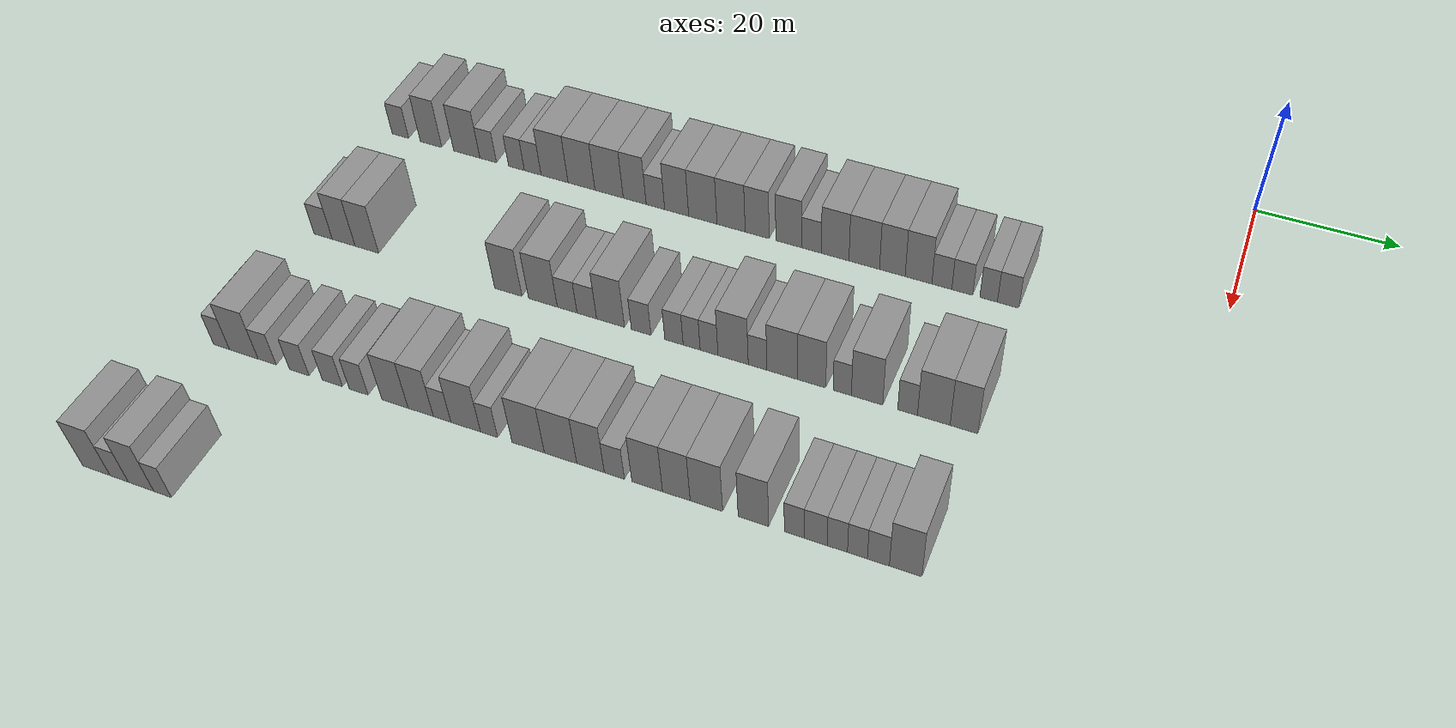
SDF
<sdf version="1.6">
 <world name="default">
  <model name="building_66">
   <static>1</static>
   <pose>25.0000 -121.5456 0 0.000000 0.000000 0.000000</pose>
   <link name="link">
    <pose>0 0 3.00 0 0 0</pose>
    <collision name="collision"><geometry><box><size>10.0000 2.8247 6.0000</size></box></geometry></collision>
    <visual name="visual">
     <cast_shadows>0</cast_shadows>
     <geometry><box><size>10.0000 2.8247 6.0000</size></box></geometry>
     <material>
      <script>
       <uri>model://grey_wall/materials/scripts</uri>
       <uri>model://grey_wall/materials/textures</uri>
       <name>vrc/grey_wall</name>
      </script>
     </material>
    </visual>
   </link>
  </model>
  <model name="building_67">
   <static>1</static>
   <pose>25.0000 -116.3218 0 0.000000 0.000000 0.000000</pose>
   <link name="link">
    <pose>0 0 4.50 0 0 0</pose>
    <collision name="collision"><geometry><box><size>10.0000 3.6230 9.0000</size></box></geometry></collision>
    <visual name="visual">
     <cast_shadows>0</cast_shadows>
     <geometry><box><size>10.0000 3.6230 9.0000</size></box></geometry>
     <material>
      <script>
       <uri>model://grey_wall/materials/scripts</uri>
       <uri>model://grey_wall/materials/textures</uri>
       <name>vrc/grey_wall</name>
      </script>
     </material>
    </visual>
   </link>
  </model>
  <model name="building_68">
   <static>1</static>
   <pose>25.0000 -110.3166 0 0.000000 0.000000 0.000000</pose>
   <link name="link">
    <pose>0 0 4.50 0 0 0</pose>
    <collision name="collision"><geometry><box><size>10.0000 4.3874 9.0000</size></box></geometry></collision>
    <visual name="visual">
     <cast_shadows>0</cast_shadows>
     <geometry><box><size>10.0000 4.3874 9.0000</size></box></geometry>
     <material>
      <script>
       <uri>model://grey_wall/materials/scripts</uri>
       <uri>model://grey_wall/materials/textures</uri>
       <name>vrc/grey_wall</name>
      </script>
     </material>
    </visual>
   </link>
  </model>
  <model name="building_69">
   <static>1</static>
   <pose>25.0000 -106.7494 0 0.000000 0.000000 0.000000</pose>
   <link name="link">
    <pose>0 0 3.00 0 0 0</pose>
    <collision name="collision"><geometry><box><size>10.0000 2.7470 6.0000</size></box></geometry></collision>
    <visual name="visual">
     <cast_shadows>0</cast_shadows>
     <geometry><box><size>10.0000 2.7470 6.0000</size></box></geometry>
     <material>
      <script>
       <uri>model://grey_wall/materials/scripts</uri>
       <uri>model://grey_wall/materials/textures</uri>
       <name>vrc/grey_wall</name>
      </script>
     </material>
    </visual>
   </link>
  </model>
  <model name="building_70">
   <static>1</static>
   <pose>25.0000 -102.0822 0 0.000000 0.000000 0.000000</pose>
   <link name="link">
    <pose>0 0 3.00 0 0 0</pose>
    <collision name="collision"><geometry><box><size>10.0000 2.5875 6.0000</size></box></geometry></collision>
    <visual name="visual">
     <cast_shadows>0</cast_shadows>
     <geometry><box><size>10.0000 2.5875 6.0000</size></box></geometry>
     <material>
      <script>
       <uri>model://grey_wall/materials/scripts</uri>
       <uri>model://grey_wall/materials/textures</uri>
       <name>vrc/grey_wall</name>
      </script>
     </material>
    </visual>
   </link>
  </model>
  <model name="building_71">
   <static>1</static>
   <pose>25.0000 -99.4238 0 0.000000 0.000000 0.000000</pose>
   <link name="link">
    <pose>0 0 3.00 0 0 0</pose>
    <collision name="collision"><geometry><box><size>10.0000 2.7293 6.0000</size></box></geometry></collision>
    <visual name="visual">
     <cast_shadows>0</cast_shadows>
     <geometry><box><size>10.0000 2.7293 6.0000</size></box></geometry>
     <material>
      <script>
       <uri>model://grey_wall/materials/scripts</uri>
       <uri>model://grey_wall/materials/textures</uri>
       <name>vrc/grey_wall</name>
      </script>
     </material>
    </visual>
   </link>
  </model>
  <model name="building_72">
   <static>1</static>
   <pose>25.0000 -95.8785 0 0.000000 0.000000 0.000000</pose>
   <link name="link">
    <pose>0 0 4.50 0 0 0</pose>
    <collision name="collision"><geometry><box><size>10.0000 4.3613 9.0000</size></box></geometry></collision>
    <visual name="visual">
     <cast_shadows>0</cast_shadows>
     <geometry><box><size>10.0000 4.3613 9.0000</size></box></geometry>
     <material>
      <script>
       <uri>model://grey_wall/materials/scripts</uri>
       <uri>model://grey_wall/materials/textures</uri>
       <name>vrc/grey_wall</name>
      </script>
     </material>
    </visual>
   </link>
  </model>
  <model name="building_73">
   <static>1</static>
   <pose>25.0000 -91.5389 0 0.000000 0.000000 0.000000</pose>
   <link name="link">
    <pose>0 0 4.50 0 0 0</pose>
    <collision name="collision"><geometry><box><size>10.0000 4.3179 9.0000</size></box></geometry></collision>
    <visual name="visual">
     <cast_shadows>0</cast_shadows>
     <geometry><box><size>10.0000 4.3179 9.0000</size></box></geometry>
     <material>
      <script>
       <uri>model://grey_wall/materials/scripts</uri>
       <uri>model://grey_wall/materials/textures</uri>
       <name>vrc/grey_wall</name>
      </script>
     </material>
    </visual>
   </link>
  </model>
  <model name="building_74">
   <static>1</static>
   <pose>25.0000 -87.1321 0 0.000000 0.000000 0.000000</pose>
   <link name="link">
    <pose>0 0 4.50 0 0 0</pose>
    <collision name="collision"><geometry><box><size>10.0000 4.4958 9.0000</size></box></geometry></collision>
    <visual name="visual">
     <cast_shadows>0</cast_shadows>
     <geometry><box><size>10.0000 4.4958 9.0000</size></box></geometry>
     <material>
      <script>
       <uri>model://grey_wall/materials/scripts</uri>
       <uri>model://grey_wall/materials/textures</uri>
       <name>vrc/grey_wall</name>
      </script>
     </material>
    </visual>
   </link>
  </model>
  <model name="building_75">
   <static>1</static>
   <pose>25.0000 -83.0753 0 0.000000 0.000000 0.000000</pose>
   <link name="link">
    <pose>0 0 4.50 0 0 0</pose>
    <collision name="collision"><geometry><box><size>10.0000 3.6179 9.0000</size></box></geometry></collision>
    <visual name="visual">
     <cast_shadows>0</cast_shadows>
     <geometry><box><size>10.0000 3.6179 9.0000</size></box></geometry>
     <material>
      <script>
       <uri>model://grey_wall/materials/scripts</uri>
       <uri>model://grey_wall/materials/textures</uri>
       <name>vrc/grey_wall</name>
      </script>
     </material>
    </visual>
   </link>
  </model>
  <model name="building_76">
   <static>1</static>
   <pose>25.0000 -79.8219 0 0.000000 0.000000 0.000000</pose>
   <link name="link">
    <pose>0 0 3.00 0 0 0</pose>
    <collision name="collision"><geometry><box><size>10.0000 2.8889 6.0000</size></box></geometry></collision>
    <visual name="visual">
     <cast_shadows>0</cast_shadows>
     <geometry><box><size>10.0000 2.8889 6.0000</size></box></geometry>
     <material>
      <script>
       <uri>model://grey_wall/materials/scripts</uri>
       <uri>model://grey_wall/materials/textures</uri>
       <name>vrc/grey_wall</name>
      </script>
     </material>
    </visual>
   </link>
  </model>
  <model name="building_77">
   <static>1</static>
   <pose>25.0000 -76.5133 0 0.000000 0.000000 0.000000</pose>
   <link name="link">
    <pose>0 0 4.50 0 0 0</pose>
    <collision name="collision"><geometry><box><size>10.0000 3.7283 9.0000</size></box></geometry></collision>
    <visual name="visual">
     <cast_shadows>0</cast_shadows>
     <geometry><box><size>10.0000 3.7283 9.0000</size></box></geometry>
     <material>
      <script>
       <uri>model://grey_wall/materials/scripts</uri>
       <uri>model://grey_wall/materials/textures</uri>
       <name>vrc/grey_wall</name>
      </script>
     </material>
    </visual>
   </link>
  </model>
  <model name="building_78">
   <static>1</static>
   <pose>25.0000 -72.4748 0 0.000000 0.000000 0.000000</pose>
   <link name="link">
    <pose>0 0 4.50 0 0 0</pose>
    <collision name="collision"><geometry><box><size>10.0000 4.3487 9.0000</size></box></geometry></collision>
    <visual name="visual">
     <cast_shadows>0</cast_shadows>
     <geometry><box><size>10.0000 4.3487 9.0000</size></box></geometry>
     <material>
      <script>
       <uri>model://grey_wall/materials/scripts</uri>
       <uri>model://grey_wall/materials/textures</uri>
       <name>vrc/grey_wall</name>
      </script>
     </material>
    </visual>
   </link>
  </model>
  <model name="building_79">
   <static>1</static>
   <pose>25.0000 -68.1503 0 0.000000 0.000000 0.000000</pose>
   <link name="link">
    <pose>0 0 4.50 0 0 0</pose>
    <collision name="collision"><geometry><box><size>10.0000 4.3003 9.0000</size></box></geometry></collision>
    <visual name="visual">
     <cast_shadows>0</cast_shadows>
     <geometry><box><size>10.0000 4.3003 9.0000</size></box></geometry>
     <material>
      <script>
       <uri>model://grey_wall/materials/scripts</uri>
       <uri>model://grey_wall/materials/textures</uri>
       <name>vrc/grey_wall</name>
      </script>
     </material>
    </visual>
   </link>
  </model>
  <model name="building_80">
   <static>1</static>
   <pose>25.0000 -64.1931 0 0.000000 0.000000 0.000000</pose>
   <link name="link">
    <pose>0 0 4.50 0 0 0</pose>
    <collision name="collision"><geometry><box><size>10.0000 3.6141 9.0000</size></box></geometry></collision>
    <visual name="visual">
     <cast_shadows>0</cast_shadows>
     <geometry><box><size>10.0000 3.6141 9.0000</size></box></geometry>
     <material>
      <script>
       <uri>model://grey_wall/materials/scripts</uri>
       <uri>model://grey_wall/materials/textures</uri>
       <name>vrc/grey_wall</name>
      </script>
     </material>
    </visual>
   </link>
  </model>
  <model name="building_81">
   <static>1</static>
   <pose>25.0000 -59.4810 0 0.000000 0.000000 0.000000</pose>
   <link name="link">
    <pose>0 0 4.50 0 0 0</pose>
    <collision name="collision"><geometry><box><size>10.0000 3.8100 9.0000</size></box></geometry></collision>
    <visual name="visual">
     <cast_shadows>0</cast_shadows>
     <geometry><box><size>10.0000 3.8100 9.0000</size></box></geometry>
     <material>
      <script>
       <uri>model://grey_wall/materials/scripts</uri>
       <uri>model://grey_wall/materials/textures</uri>
       <name>vrc/grey_wall</name>
      </script>
     </material>
    </visual>
   </link>
  </model>
  <model name="building_82">
   <static>1</static>
   <pose>25.0000 -56.1073 0 0.000000 0.000000 0.000000</pose>
   <link name="link">
    <pose>0 0 3.00 0 0 0</pose>
    <collision name="collision"><geometry><box><size>10.0000 2.9374 6.0000</size></box></geometry></collision>
    <visual name="visual">
     <cast_shadows>0</cast_shadows>
     <geometry><box><size>10.0000 2.9374 6.0000</size></box></geometry>
     <material>
      <script>
       <uri>model://grey_wall/materials/scripts</uri>
       <uri>model://grey_wall/materials/textures</uri>
       <name>vrc/grey_wall</name>
      </script>
     </material>
    </visual>
   </link>
  </model>
  <model name="building_83">
   <static>1</static>
   <pose>25.0000 -52.6059 0 0.000000 0.000000 0.000000</pose>
   <link name="link">
    <pose>0 0 4.50 0 0 0</pose>
    <collision name="collision"><geometry><box><size>10.0000 4.0654 9.0000</size></box></geometry></collision>
    <visual name="visual">
     <cast_shadows>0</cast_shadows>
     <geometry><box><size>10.0000 4.0654 9.0000</size></box></geometry>
     <material>
      <script>
       <uri>model://grey_wall/materials/scripts</uri>
       <uri>model://grey_wall/materials/textures</uri>
       <name>vrc/grey_wall</name>
      </script>
     </material>
    </visual>
   </link>
  </model>
  <model name="building_84">
   <static>1</static>
   <pose>25.0000 -48.3520 0 0.000000 0.000000 0.000000</pose>
   <link name="link">
    <pose>0 0 4.50 0 0 0</pose>
    <collision name="collision"><geometry><box><size>10.0000 4.4424 9.0000</size></box></geometry></collision>
    <visual name="visual">
     <cast_shadows>0</cast_shadows>
     <geometry><box><size>10.0000 4.4424 9.0000</size></box></geometry>
     <material>
      <script>
       <uri>model://grey_wall/materials/scripts</uri>
       <uri>model://grey_wall/materials/textures</uri>
       <name>vrc/grey_wall</name>
      </script>
     </material>
    </visual>
   </link>
  </model>
  <model name="building_85">
   <static>1</static>
   <pose>25.0000 -44.2857 0 0.000000 0.000000 0.000000</pose>
   <link name="link">
    <pose>0 0 4.50 0 0 0</pose>
    <collision name="collision"><geometry><box><size>10.0000 3.6903 9.0000</size></box></geometry></collision>
    <visual name="visual">
     <cast_shadows>0</cast_shadows>
     <geometry><box><size>10.0000 3.6903 9.0000</size></box></geometry>
     <material>
      <script>
       <uri>model://grey_wall/materials/scripts</uri>
       <uri>model://grey_wall/materials/textures</uri>
       <name>vrc/grey_wall</name>
      </script>
     </material>
    </visual>
   </link>
  </model>
  <model name="building_86">
   <static>1</static>
   <pose>25.0000 -40.5331 0 0.000000 0.000000 0.000000</pose>
   <link name="link">
    <pose>0 0 4.50 0 0 0</pose>
    <collision name="collision"><geometry><box><size>10.0000 3.8148 9.0000</size></box></geometry></collision>
    <visual name="visual">
     <cast_shadows>0</cast_shadows>
     <geometry><box><size>10.0000 3.8148 9.0000</size></box></geometry>
     <material>
      <script>
       <uri>model://grey_wall/materials/scripts</uri>
       <uri>model://grey_wall/materials/textures</uri>
       <name>vrc/grey_wall</name>
      </script>
     </material>
    </visual>
   </link>
  </model>
  <model name="building_87">
   <static>1</static>
   <pose>25.0000 -37.2084 0 0.000000 0.000000 0.000000</pose>
   <link name="link">
    <pose>0 0 3.00 0 0 0</pose>
    <collision name="collision"><geometry><box><size>10.0000 2.8346 6.0000</size></box></geometry></collision>
    <visual name="visual">
     <cast_shadows>0</cast_shadows>
     <geometry><box><size>10.0000 2.8346 6.0000</size></box></geometry>
     <material>
      <script>
       <uri>model://grey_wall/materials/scripts</uri>
       <uri>model://grey_wall/materials/textures</uri>
       <name>vrc/grey_wall</name>
      </script>
     </material>
    </visual>
   </link>
  </model>
  <model name="building_88">
   <static>1</static>
   <pose>25.0000 -34.3234 0 0.000000 0.000000 0.000000</pose>
   <link name="link">
    <pose>0 0 3.00 0 0 0</pose>
    <collision name="collision"><geometry><box><size>10.0000 2.9355 6.0000</size></box></geometry></collision>
    <visual name="visual">
     <cast_shadows>0</cast_shadows>
     <geometry><box><size>10.0000 2.9355 6.0000</size></box></geometry>
     <material>
      <script>
       <uri>model://grey_wall/materials/scripts</uri>
       <uri>model://grey_wall/materials/textures</uri>
       <name>vrc/grey_wall</name>
      </script>
     </material>
    </visual>
   </link>
  </model>
  <model name="building_89">
   <static>1</static>
   <pose>25.0000 -30.6350 0 0.000000 0.000000 0.000000</pose>
   <link name="link">
    <pose>0 0 3.00 0 0 0</pose>
    <collision name="collision"><geometry><box><size>10.0000 2.4412 6.0000</size></box></geometry></collision>
    <visual name="visual">
     <cast_shadows>0</cast_shadows>
     <geometry><box><size>10.0000 2.4412 6.0000</size></box></geometry>
     <material>
      <script>
       <uri>model://grey_wall/materials/scripts</uri>
       <uri>model://grey_wall/materials/textures</uri>
       <name>vrc/grey_wall</name>
      </script>
     </material>
    </visual>
   </link>
  </model>
  <model name="building_90">
   <static>1</static>
   <pose>25.0000 -27.9264 0 0.000000 0.000000 0.000000</pose>
   <link name="link">
    <pose>0 0 3.00 0 0 0</pose>
    <collision name="collision"><geometry><box><size>10.0000 2.9761 6.0000</size></box></geometry></collision>
    <visual name="visual">
     <cast_shadows>0</cast_shadows>
     <geometry><box><size>10.0000 2.9761 6.0000</size></box></geometry>
     <material>
      <script>
       <uri>model://grey_wall/materials/scripts</uri>
       <uri>model://grey_wall/materials/textures</uri>
       <name>vrc/grey_wall</name>
      </script>
     </material>
    </visual>
   </link>
  </model>
  <model name="building_257">
   <static>1</static>
   <pose>47.0000 -120.6786 0 0.000000 0.000000 0.000000</pose>
   <link name="link">
    <pose>0 0 3.00 0 0 0</pose>
    <collision name="collision"><geometry><box><size>10.0000 2.9504 6.0000</size></box></geometry></collision>
    <visual name="visual">
     <cast_shadows>0</cast_shadows>
     <geometry><box><size>10.0000 2.9504 6.0000</size></box></geometry>
     <material>
      <script>
       <uri>model://grey_wall/materials/scripts</uri>
       <uri>model://grey_wall/materials/textures</uri>
       <name>vrc/grey_wall</name>
      </script>
     </material>
    </visual>
   </link>
  </model>
  <model name="building_258">
   <static>1</static>
   <pose>47.0000 -117.3621 0 0.000000 0.000000 0.000000</pose>
   <link name="link">
    <pose>0 0 4.50 0 0 0</pose>
    <collision name="collision"><geometry><box><size>10.0000 3.6825 9.0000</size></box></geometry></collision>
    <visual name="visual">
     <cast_shadows>0</cast_shadows>
     <geometry><box><size>10.0000 3.6825 9.0000</size></box></geometry>
     <material>
      <script>
       <uri>model://grey_wall/materials/scripts</uri>
       <uri>model://grey_wall/materials/textures</uri>
       <name>vrc/grey_wall</name>
      </script>
     </material>
    </visual>
   </link>
  </model>
  <model name="building_259">
   <static>1</static>
   <pose>47.0000 -113.6303 0 0.000000 0.000000 0.000000</pose>
   <link name="link">
    <pose>0 0 4.50 0 0 0</pose>
    <collision name="collision"><geometry><box><size>10.0000 3.7813 9.0000</size></box></geometry></collision>
    <visual name="visual">
     <cast_shadows>0</cast_shadows>
     <geometry><box><size>10.0000 3.7813 9.0000</size></box></geometry>
     <material>
      <script>
       <uri>model://grey_wall/materials/scripts</uri>
       <uri>model://grey_wall/materials/textures</uri>
       <name>vrc/grey_wall</name>
      </script>
     </material>
    </visual>
   </link>
  </model>
  <model name="building_260">
   <static>1</static>
   <pose>47.0000 -91.5283 0 0.000000 0.000000 0.000000</pose>
   <link name="link">
    <pose>0 0 4.50 0 0 0</pose>
    <collision name="collision"><geometry><box><size>10.0000 4.1408 9.0000</size></box></geometry></collision>
    <visual name="visual">
     <cast_shadows>0</cast_shadows>
     <geometry><box><size>10.0000 4.1408 9.0000</size></box></geometry>
     <material>
      <script>
       <uri>model://grey_wall/materials/scripts</uri>
       <uri>model://grey_wall/materials/textures</uri>
       <name>vrc/grey_wall</name>
      </script>
     </material>
    </visual>
   </link>
  </model>
  <model name="building_261">
   <static>1</static>
   <pose>47.0000 -86.2986 0 0.000000 0.000000 0.000000</pose>
   <link name="link">
    <pose>0 0 4.50 0 0 0</pose>
    <collision name="collision"><geometry><box><size>10.0000 4.3186 9.0000</size></box></geometry></collision>
    <visual name="visual">
     <cast_shadows>0</cast_shadows>
     <geometry><box><size>10.0000 4.3186 9.0000</size></box></geometry>
     <material>
      <script>
       <uri>model://grey_wall/materials/scripts</uri>
       <uri>model://grey_wall/materials/textures</uri>
       <name>vrc/grey_wall</name>
      </script>
     </material>
    </visual>
   </link>
  </model>
  <model name="building_262">
   <static>1</static>
   <pose>47.0000 -82.6675 0 0.000000 0.000000 0.000000</pose>
   <link name="link">
    <pose>0 0 3.00 0 0 0</pose>
    <collision name="collision"><geometry><box><size>10.0000 2.9435 6.0000</size></box></geometry></collision>
    <visual name="visual">
     <cast_shadows>0</cast_shadows>
     <geometry><box><size>10.0000 2.9435 6.0000</size></box></geometry>
     <material>
      <script>
       <uri>model://grey_wall/materials/scripts</uri>
       <uri>model://grey_wall/materials/textures</uri>
       <name>vrc/grey_wall</name>
      </script>
     </material>
    </visual>
   </link>
  </model>
  <model name="building_263">
   <static>1</static>
   <pose>47.0000 -79.7464 0 0.000000 0.000000 0.000000</pose>
   <link name="link">
    <pose>0 0 3.00 0 0 0</pose>
    <collision name="collision"><geometry><box><size>10.0000 2.8988 6.0000</size></box></geometry></collision>
    <visual name="visual">
     <cast_shadows>0</cast_shadows>
     <geometry><box><size>10.0000 2.8988 6.0000</size></box></geometry>
     <material>
      <script>
       <uri>model://grey_wall/materials/scripts</uri>
       <uri>model://grey_wall/materials/textures</uri>
       <name>vrc/grey_wall</name>
      </script>
     </material>
    </visual>
   </link>
  </model>
  <model name="building_264">
   <static>1</static>
   <pose>47.0000 -76.2511 0 0.000000 0.000000 0.000000</pose>
   <link name="link">
    <pose>0 0 4.50 0 0 0</pose>
    <collision name="collision"><geometry><box><size>10.0000 4.0918 9.0000</size></box></geometry></collision>
    <visual name="visual">
     <cast_shadows>0</cast_shadows>
     <geometry><box><size>10.0000 4.0918 9.0000</size></box></geometry>
     <material>
      <script>
       <uri>model://grey_wall/materials/scripts</uri>
       <uri>model://grey_wall/materials/textures</uri>
       <name>vrc/grey_wall</name>
      </script>
     </material>
    </visual>
   </link>
  </model>
  <model name="building_265">
   <static>1</static>
   <pose>47.0000 -71.7784 0 0.000000 0.000000 0.000000</pose>
   <link name="link">
    <pose>0 0 3.00 0 0 0</pose>
    <collision name="collision"><geometry><box><size>10.0000 2.8534 6.0000</size></box></geometry></collision>
    <visual name="visual">
     <cast_shadows>0</cast_shadows>
     <geometry><box><size>10.0000 2.8534 6.0000</size></box></geometry>
     <material>
      <script>
       <uri>model://grey_wall/materials/scripts</uri>
       <uri>model://grey_wall/materials/textures</uri>
       <name>vrc/grey_wall</name>
      </script>
     </material>
    </visual>
   </link>
  </model>
  <model name="building_266">
   <static>1</static>
   <pose>47.0000 -67.0367 0 0.000000 0.000000 0.000000</pose>
   <link name="link">
    <pose>0 0 3.00 0 0 0</pose>
    <collision name="collision"><geometry><box><size>10.0000 2.6301 6.0000</size></box></geometry></collision>
    <visual name="visual">
     <cast_shadows>0</cast_shadows>
     <geometry><box><size>10.0000 2.6301 6.0000</size></box></geometry>
     <material>
      <script>
       <uri>model://grey_wall/materials/scripts</uri>
       <uri>model://grey_wall/materials/textures</uri>
       <name>vrc/grey_wall</name>
      </script>
     </material>
    </visual>
   </link>
  </model>
  <model name="building_267">
   <static>1</static>
   <pose>47.0000 -64.5100 0 0.000000 0.000000 0.000000</pose>
   <link name="link">
    <pose>0 0 3.00 0 0 0</pose>
    <collision name="collision"><geometry><box><size>10.0000 2.4233 6.0000</size></box></geometry></collision>
    <visual name="visual">
     <cast_shadows>0</cast_shadows>
     <geometry><box><size>10.0000 2.4233 6.0000</size></box></geometry>
     <material>
      <script>
       <uri>model://grey_wall/materials/scripts</uri>
       <uri>model://grey_wall/materials/textures</uri>
       <name>vrc/grey_wall</name>
      </script>
     </material>
    </visual>
   </link>
  </model>
  <model name="building_268">
   <static>1</static>
   <pose>47.0000 -62.0360 0 0.000000 0.000000 0.000000</pose>
   <link name="link">
    <pose>0 0 3.00 0 0 0</pose>
    <collision name="collision"><geometry><box><size>10.0000 2.5246 6.0000</size></box></geometry></collision>
    <visual name="visual">
     <cast_shadows>0</cast_shadows>
     <geometry><box><size>10.0000 2.5246 6.0000</size></box></geometry>
     <material>
      <script>
       <uri>model://grey_wall/materials/scripts</uri>
       <uri>model://grey_wall/materials/textures</uri>
       <name>vrc/grey_wall</name>
      </script>
     </material>
    </visual>
   </link>
  </model>
  <model name="building_269">
   <static>1</static>
   <pose>47.0000 -58.6426 0 0.000000 0.000000 0.000000</pose>
   <link name="link">
    <pose>0 0 4.50 0 0 0</pose>
    <collision name="collision"><geometry><box><size>10.0000 4.2624 9.0000</size></box></geometry></collision>
    <visual name="visual">
     <cast_shadows>0</cast_shadows>
     <geometry><box><size>10.0000 4.2624 9.0000</size></box></geometry>
     <material>
      <script>
       <uri>model://grey_wall/materials/scripts</uri>
       <uri>model://grey_wall/materials/textures</uri>
       <name>vrc/grey_wall</name>
      </script>
     </material>
    </visual>
   </link>
  </model>
  <model name="building_270">
   <static>1</static>
   <pose>47.0000 -55.2125 0 0.000000 0.000000 0.000000</pose>
   <link name="link">
    <pose>0 0 3.00 0 0 0</pose>
    <collision name="collision"><geometry><box><size>10.0000 2.5977 6.0000</size></box></geometry></collision>
    <visual name="visual">
     <cast_shadows>0</cast_shadows>
     <geometry><box><size>10.0000 2.5977 6.0000</size></box></geometry>
     <material>
      <script>
       <uri>model://grey_wall/materials/scripts</uri>
       <uri>model://grey_wall/materials/textures</uri>
       <name>vrc/grey_wall</name>
      </script>
     </material>
    </visual>
   </link>
  </model>
  <model name="building_271">
   <static>1</static>
   <pose>47.0000 -51.7790 0 0.000000 0.000000 0.000000</pose>
   <link name="link">
    <pose>0 0 4.50 0 0 0</pose>
    <collision name="collision"><geometry><box><size>10.0000 4.2694 9.0000</size></box></geometry></collision>
    <visual name="visual">
     <cast_shadows>0</cast_shadows>
     <geometry><box><size>10.0000 4.2694 9.0000</size></box></geometry>
     <material>
      <script>
       <uri>model://grey_wall/materials/scripts</uri>
       <uri>model://grey_wall/materials/textures</uri>
       <name>vrc/grey_wall</name>
      </script>
     </material>
    </visual>
   </link>
  </model>
  <model name="building_272">
   <static>1</static>
   <pose>47.0000 -47.7325 0 0.000000 0.000000 0.000000</pose>
   <link name="link">
    <pose>0 0 4.50 0 0 0</pose>
    <collision name="collision"><geometry><box><size>10.0000 3.8236 9.0000</size></box></geometry></collision>
    <visual name="visual">
     <cast_shadows>0</cast_shadows>
     <geometry><box><size>10.0000 3.8236 9.0000</size></box></geometry>
     <material>
      <script>
       <uri>model://grey_wall/materials/scripts</uri>
       <uri>model://grey_wall/materials/textures</uri>
       <name>vrc/grey_wall</name>
      </script>
     </material>
    </visual>
   </link>
  </model>
  <model name="building_273">
   <static>1</static>
   <pose>47.0000 -43.5928 0 0.000000 0.000000 0.000000</pose>
   <link name="link">
    <pose>0 0 3.00 0 0 0</pose>
    <collision name="collision"><geometry><box><size>10.0000 2.4556 6.0000</size></box></geometry></collision>
    <visual name="visual">
     <cast_shadows>0</cast_shadows>
     <geometry><box><size>10.0000 2.4556 6.0000</size></box></geometry>
     <material>
      <script>
       <uri>model://grey_wall/materials/scripts</uri>
       <uri>model://grey_wall/materials/textures</uri>
       <name>vrc/grey_wall</name>
      </script>
     </material>
    </visual>
   </link>
  </model>
  <model name="building_274">
   <static>1</static>
   <pose>47.0000 -40.2528 0 0.000000 0.000000 0.000000</pose>
   <link name="link">
    <pose>0 0 4.50 0 0 0</pose>
    <collision name="collision"><geometry><box><size>10.0000 4.2245 9.0000</size></box></geometry></collision>
    <visual name="visual">
     <cast_shadows>0</cast_shadows>
     <geometry><box><size>10.0000 4.2245 9.0000</size></box></geometry>
     <material>
      <script>
       <uri>model://grey_wall/materials/scripts</uri>
       <uri>model://grey_wall/materials/textures</uri>
       <name>vrc/grey_wall</name>
      </script>
     </material>
    </visual>
   </link>
  </model>
  <model name="building_275">
   <static>1</static>
   <pose>47.0000 -34.8385 0 0.000000 0.000000 0.000000</pose>
   <link name="link">
    <pose>0 0 3.00 0 0 0</pose>
    <collision name="collision"><geometry><box><size>10.0000 2.6041 6.0000</size></box></geometry></collision>
    <visual name="visual">
     <cast_shadows>0</cast_shadows>
     <geometry><box><size>10.0000 2.6041 6.0000</size></box></geometry>
     <material>
      <script>
       <uri>model://grey_wall/materials/scripts</uri>
       <uri>model://grey_wall/materials/textures</uri>
       <name>vrc/grey_wall</name>
      </script>
     </material>
    </visual>
   </link>
  </model>
  <model name="building_276">
   <static>1</static>
   <pose>47.0000 -31.3907 0 0.000000 0.000000 0.000000</pose>
   <link name="link">
    <pose>0 0 4.50 0 0 0</pose>
    <collision name="collision"><geometry><box><size>10.0000 4.2915 9.0000</size></box></geometry></collision>
    <visual name="visual">
     <cast_shadows>0</cast_shadows>
     <geometry><box><size>10.0000 4.2915 9.0000</size></box></geometry>
     <material>
      <script>
       <uri>model://grey_wall/materials/scripts</uri>
       <uri>model://grey_wall/materials/textures</uri>
       <name>vrc/grey_wall</name>
      </script>
     </material>
    </visual>
   </link>
  </model>
  <model name="building_277">
   <static>1</static>
   <pose>47.0000 -27.4415 0 0.000000 0.000000 0.000000</pose>
   <link name="link">
    <pose>0 0 4.50 0 0 0</pose>
    <collision name="collision"><geometry><box><size>10.0000 3.6068 9.0000</size></box></geometry></collision>
    <visual name="visual">
     <cast_shadows>0</cast_shadows>
     <geometry><box><size>10.0000 3.6068 9.0000</size></box></geometry>
     <material>
      <script>
       <uri>model://grey_wall/materials/scripts</uri>
       <uri>model://grey_wall/materials/textures</uri>
       <name>vrc/grey_wall</name>
      </script>
     </material>
    </visual>
   </link>
  </model>
  <model name="building_441">
   <static>1</static>
   <pose>69.0000 -121.9018 0 0.000000 0.000000 0.000000</pose>
   <link name="link">
    <pose>0 0 3.00 0 0 0</pose>
    <collision name="collision"><geometry><box><size>10.0000 2.4524 6.0000</size></box></geometry></collision>
    <visual name="visual">
     <cast_shadows>0</cast_shadows>
     <geometry><box><size>10.0000 2.4524 6.0000</size></box></geometry>
     <material>
      <script>
       <uri>model://grey_wall/materials/scripts</uri>
       <uri>model://grey_wall/materials/textures</uri>
       <name>vrc/grey_wall</name>
      </script>
     </material>
    </visual>
   </link>
  </model>
  <model name="building_442">
   <static>1</static>
   <pose>69.0000 -118.4728 0 0.000000 0.000000 0.000000</pose>
   <link name="link">
    <pose>0 0 4.50 0 0 0</pose>
    <collision name="collision"><geometry><box><size>10.0000 4.4055 9.0000</size></box></geometry></collision>
    <visual name="visual">
     <cast_shadows>0</cast_shadows>
     <geometry><box><size>10.0000 4.4055 9.0000</size></box></geometry>
     <material>
      <script>
       <uri>model://grey_wall/materials/scripts</uri>
       <uri>model://grey_wall/materials/textures</uri>
       <name>vrc/grey_wall</name>
      </script>
     </material>
    </visual>
   </link>
  </model>
  <model name="building_443">
   <static>1</static>
   <pose>69.0000 -114.8821 0 0.000000 0.000000 0.000000</pose>
   <link name="link">
    <pose>0 0 3.00 0 0 0</pose>
    <collision name="collision"><geometry><box><size>10.0000 2.7758 6.0000</size></box></geometry></collision>
    <visual name="visual">
     <cast_shadows>0</cast_shadows>
     <geometry><box><size>10.0000 2.7758 6.0000</size></box></geometry>
     <material>
      <script>
       <uri>model://grey_wall/materials/scripts</uri>
       <uri>model://grey_wall/materials/textures</uri>
       <name>vrc/grey_wall</name>
      </script>
     </material>
    </visual>
   </link>
  </model>
  <model name="building_444">
   <static>1</static>
   <pose>69.0000 -110.0094 0 0.000000 0.000000 0.000000</pose>
   <link name="link">
    <pose>0 0 3.00 0 0 0</pose>
    <collision name="collision"><geometry><box><size>10.0000 2.9697 6.0000</size></box></geometry></collision>
    <visual name="visual">
     <cast_shadows>0</cast_shadows>
     <geometry><box><size>10.0000 2.9697 6.0000</size></box></geometry>
     <material>
      <script>
       <uri>model://grey_wall/materials/scripts</uri>
       <uri>model://grey_wall/materials/textures</uri>
       <name>vrc/grey_wall</name>
      </script>
     </material>
    </visual>
   </link>
  </model>
  <model name="building_445">
   <static>1</static>
   <pose>69.0000 -105.0253 0 0.000000 0.000000 0.000000</pose>
   <link name="link">
    <pose>0 0 3.00 0 0 0</pose>
    <collision name="collision"><geometry><box><size>10.0000 2.9985 6.0000</size></box></geometry></collision>
    <visual name="visual">
     <cast_shadows>0</cast_shadows>
     <geometry><box><size>10.0000 2.9985 6.0000</size></box></geometry>
     <material>
      <script>
       <uri>model://grey_wall/materials/scripts</uri>
       <uri>model://grey_wall/materials/textures</uri>
       <name>vrc/grey_wall</name>
      </script>
     </material>
    </visual>
   </link>
  </model>
  <model name="building_446">
   <static>1</static>
   <pose>69.0000 -101.1278 0 0.000000 0.000000 0.000000</pose>
   <link name="link">
    <pose>0 0 3.00 0 0 0</pose>
    <collision name="collision"><geometry><box><size>10.0000 2.7967 6.0000</size></box></geometry></collision>
    <visual name="visual">
     <cast_shadows>0</cast_shadows>
     <geometry><box><size>10.0000 2.7967 6.0000</size></box></geometry>
     <material>
      <script>
       <uri>model://grey_wall/materials/scripts</uri>
       <uri>model://grey_wall/materials/textures</uri>
       <name>vrc/grey_wall</name>
      </script>
     </material>
    </visual>
   </link>
  </model>
  <model name="building_447">
   <static>1</static>
   <pose>69.0000 -95.8148 0 0.000000 0.000000 0.000000</pose>
   <link name="link">
    <pose>0 0 4.50 0 0 0</pose>
    <collision name="collision"><geometry><box><size>10.0000 3.8292 9.0000</size></box></geometry></collision>
    <visual name="visual">
     <cast_shadows>0</cast_shadows>
     <geometry><box><size>10.0000 3.8292 9.0000</size></box></geometry>
     <material>
      <script>
       <uri>model://grey_wall/materials/scripts</uri>
       <uri>model://grey_wall/materials/textures</uri>
       <name>vrc/grey_wall</name>
      </script>
     </material>
    </visual>
   </link>
  </model>
  <model name="building_448">
   <static>1</static>
   <pose>69.0000 -92.0785 0 0.000000 0.000000 0.000000</pose>
   <link name="link">
    <pose>0 0 4.50 0 0 0</pose>
    <collision name="collision"><geometry><box><size>10.0000 3.6433 9.0000</size></box></geometry></collision>
    <visual name="visual">
     <cast_shadows>0</cast_shadows>
     <geometry><box><size>10.0000 3.6433 9.0000</size></box></geometry>
     <material>
      <script>
       <uri>model://grey_wall/materials/scripts</uri>
       <uri>model://grey_wall/materials/textures</uri>
       <name>vrc/grey_wall</name>
      </script>
     </material>
    </visual>
   </link>
  </model>
  <model name="building_449">
   <static>1</static>
   <pose>69.0000 -89.0024 0 0.000000 0.000000 0.000000</pose>
   <link name="link">
    <pose>0 0 3.00 0 0 0</pose>
    <collision name="collision"><geometry><box><size>10.0000 2.5090 6.0000</size></box></geometry></collision>
    <visual name="visual">
     <cast_shadows>0</cast_shadows>
     <geometry><box><size>10.0000 2.5090 6.0000</size></box></geometry>
     <material>
      <script>
       <uri>model://grey_wall/materials/scripts</uri>
       <uri>model://grey_wall/materials/textures</uri>
       <name>vrc/grey_wall</name>
      </script>
     </material>
    </visual>
   </link>
  </model>
  <model name="building_450">
   <static>1</static>
   <pose>69.0000 -85.6410 0 0.000000 0.000000 0.000000</pose>
   <link name="link">
    <pose>0 0 4.50 0 0 0</pose>
    <collision name="collision"><geometry><box><size>10.0000 4.2139 9.0000</size></box></geometry></collision>
    <visual name="visual">
     <cast_shadows>0</cast_shadows>
     <geometry><box><size>10.0000 4.2139 9.0000</size></box></geometry>
     <material>
      <script>
       <uri>model://grey_wall/materials/scripts</uri>
       <uri>model://grey_wall/materials/textures</uri>
       <name>vrc/grey_wall</name>
      </script>
     </material>
    </visual>
   </link>
  </model>
  <model name="building_451">
   <static>1</static>
   <pose>69.0000 -82.3242 0 0.000000 0.000000 0.000000</pose>
   <link name="link">
    <pose>0 0 3.00 0 0 0</pose>
    <collision name="collision"><geometry><box><size>10.0000 2.4196 6.0000</size></box></geometry></collision>
    <visual name="visual">
     <cast_shadows>0</cast_shadows>
     <geometry><box><size>10.0000 2.4196 6.0000</size></box></geometry>
     <material>
      <script>
       <uri>model://grey_wall/materials/scripts</uri>
       <uri>model://grey_wall/materials/textures</uri>
       <name>vrc/grey_wall</name>
      </script>
     </material>
    </visual>
   </link>
  </model>
  <model name="building_452">
   <static>1</static>
   <pose>69.0000 -76.8714 0 0.000000 0.000000 0.000000</pose>
   <link name="link">
    <pose>0 0 4.50 0 0 0</pose>
    <collision name="collision"><geometry><box><size>10.0000 4.4860 9.0000</size></box></geometry></collision>
    <visual name="visual">
     <cast_shadows>0</cast_shadows>
     <geometry><box><size>10.0000 4.4860 9.0000</size></box></geometry>
     <material>
      <script>
       <uri>model://grey_wall/materials/scripts</uri>
       <uri>model://grey_wall/materials/textures</uri>
       <name>vrc/grey_wall</name>
      </script>
     </material>
    </visual>
   </link>
  </model>
  <model name="building_453">
   <static>1</static>
   <pose>69.0000 -72.4067 0 0.000000 0.000000 0.000000</pose>
   <link name="link">
    <pose>0 0 4.50 0 0 0</pose>
    <collision name="collision"><geometry><box><size>10.0000 4.4435 9.0000</size></box></geometry></collision>
    <visual name="visual">
     <cast_shadows>0</cast_shadows>
     <geometry><box><size>10.0000 4.4435 9.0000</size></box></geometry>
     <material>
      <script>
       <uri>model://grey_wall/materials/scripts</uri>
       <uri>model://grey_wall/materials/textures</uri>
       <name>vrc/grey_wall</name>
      </script>
     </material>
    </visual>
   </link>
  </model>
  <model name="building_454">
   <static>1</static>
   <pose>69.0000 -68.3160 0 0.000000 0.000000 0.000000</pose>
   <link name="link">
    <pose>0 0 4.50 0 0 0</pose>
    <collision name="collision"><geometry><box><size>10.0000 3.7379 9.0000</size></box></geometry></collision>
    <visual name="visual">
     <cast_shadows>0</cast_shadows>
     <geometry><box><size>10.0000 3.7379 9.0000</size></box></geometry>
     <material>
      <script>
       <uri>model://grey_wall/materials/scripts</uri>
       <uri>model://grey_wall/materials/textures</uri>
       <name>vrc/grey_wall</name>
      </script>
     </material>
    </visual>
   </link>
  </model>
  <model name="building_455">
   <static>1</static>
   <pose>69.0000 -65.0911 0 0.000000 0.000000 0.000000</pose>
   <link name="link">
    <pose>0 0 3.00 0 0 0</pose>
    <collision name="collision"><geometry><box><size>10.0000 2.7120 6.0000</size></box></geometry></collision>
    <visual name="visual">
     <cast_shadows>0</cast_shadows>
     <geometry><box><size>10.0000 2.7120 6.0000</size></box></geometry>
     <material>
      <script>
       <uri>model://grey_wall/materials/scripts</uri>
       <uri>model://grey_wall/materials/textures</uri>
       <name>vrc/grey_wall</name>
      </script>
     </material>
    </visual>
   </link>
  </model>
  <model name="building_456">
   <static>1</static>
   <pose>69.0000 -60.7017 0 0.000000 0.000000 0.000000</pose>
   <link name="link">
    <pose>0 0 4.50 0 0 0</pose>
    <collision name="collision"><geometry><box><size>10.0000 4.0667 9.0000</size></box></geometry></collision>
    <visual name="visual">
     <cast_shadows>0</cast_shadows>
     <geometry><box><size>10.0000 4.0667 9.0000</size></box></geometry>
     <material>
      <script>
       <uri>model://grey_wall/materials/scripts</uri>
       <uri>model://grey_wall/materials/textures</uri>
       <name>vrc/grey_wall</name>
      </script>
     </material>
    </visual>
   </link>
  </model>
  <model name="building_457">
   <static>1</static>
   <pose>69.0000 -56.8483 0 0.000000 0.000000 0.000000</pose>
   <link name="link">
    <pose>0 0 4.50 0 0 0</pose>
    <collision name="collision"><geometry><box><size>10.0000 3.6400 9.0000</size></box></geometry></collision>
    <visual name="visual">
     <cast_shadows>0</cast_shadows>
     <geometry><box><size>10.0000 3.6400 9.0000</size></box></geometry>
     <material>
      <script>
       <uri>model://grey_wall/materials/scripts</uri>
       <uri>model://grey_wall/materials/textures</uri>
       <name>vrc/grey_wall</name>
      </script>
     </material>
    </visual>
   </link>
  </model>
  <model name="building_458">
   <static>1</static>
   <pose>69.0000 -52.9093 0 0.000000 0.000000 0.000000</pose>
   <link name="link">
    <pose>0 0 4.50 0 0 0</pose>
    <collision name="collision"><geometry><box><size>10.0000 4.2379 9.0000</size></box></geometry></collision>
    <visual name="visual">
     <cast_shadows>0</cast_shadows>
     <geometry><box><size>10.0000 4.2379 9.0000</size></box></geometry>
     <material>
      <script>
       <uri>model://grey_wall/materials/scripts</uri>
       <uri>model://grey_wall/materials/textures</uri>
       <name>vrc/grey_wall</name>
      </script>
     </material>
    </visual>
   </link>
  </model>
  <model name="building_459">
   <static>1</static>
   <pose>69.0000 -46.8404 0 0.000000 0.000000 0.000000</pose>
   <link name="link">
    <pose>0 0 4.50 0 0 0</pose>
    <collision name="collision"><geometry><box><size>10.0000 3.8999 9.0000</size></box></geometry></collision>
    <visual name="visual">
     <cast_shadows>0</cast_shadows>
     <geometry><box><size>10.0000 3.8999 9.0000</size></box></geometry>
     <material>
      <script>
       <uri>model://grey_wall/materials/scripts</uri>
       <uri>model://grey_wall/materials/textures</uri>
       <name>vrc/grey_wall</name>
      </script>
     </material>
    </visual>
   </link>
  </model>
  <model name="building_460">
   <static>1</static>
   <pose>69.0000 -41.6367 0 0.000000 0.000000 0.000000</pose>
   <link name="link">
    <pose>0 0 3.00 0 0 0</pose>
    <collision name="collision"><geometry><box><size>10.0000 2.5075 6.0000</size></box></geometry></collision>
    <visual name="visual">
     <cast_shadows>0</cast_shadows>
     <geometry><box><size>10.0000 2.5075 6.0000</size></box></geometry>
     <material>
      <script>
       <uri>model://grey_wall/materials/scripts</uri>
       <uri>model://grey_wall/materials/textures</uri>
       <name>vrc/grey_wall</name>
      </script>
     </material>
    </visual>
   </link>
  </model>
  <model name="building_461">
   <static>1</static>
   <pose>69.0000 -38.9391 0 0.000000 0.000000 0.000000</pose>
   <link name="link">
    <pose>0 0 3.00 0 0 0</pose>
    <collision name="collision"><geometry><box><size>10.0000 2.8877 6.0000</size></box></geometry></collision>
    <visual name="visual">
     <cast_shadows>0</cast_shadows>
     <geometry><box><size>10.0000 2.8877 6.0000</size></box></geometry>
     <material>
      <script>
       <uri>model://grey_wall/materials/scripts</uri>
       <uri>model://grey_wall/materials/textures</uri>
       <name>vrc/grey_wall</name>
      </script>
     </material>
    </visual>
   </link>
  </model>
  <model name="building_462">
   <static>1</static>
   <pose>69.0000 -36.2339 0 0.000000 0.000000 0.000000</pose>
   <link name="link">
    <pose>0 0 3.00 0 0 0</pose>
    <collision name="collision"><geometry><box><size>10.0000 2.5227 6.0000</size></box></geometry></collision>
    <visual name="visual">
     <cast_shadows>0</cast_shadows>
     <geometry><box><size>10.0000 2.5227 6.0000</size></box></geometry>
     <material>
      <script>
       <uri>model://grey_wall/materials/scripts</uri>
       <uri>model://grey_wall/materials/textures</uri>
       <name>vrc/grey_wall</name>
      </script>
     </material>
    </visual>
   </link>
  </model>
  <model name="building_463">
   <static>1</static>
   <pose>69.0000 -33.7433 0 0.000000 0.000000 0.000000</pose>
   <link name="link">
    <pose>0 0 3.00 0 0 0</pose>
    <collision name="collision"><geometry><box><size>10.0000 2.4586 6.0000</size></box></geometry></collision>
    <visual name="visual">
     <cast_shadows>0</cast_shadows>
     <geometry><box><size>10.0000 2.4586 6.0000</size></box></geometry>
     <material>
      <script>
       <uri>model://grey_wall/materials/scripts</uri>
       <uri>model://grey_wall/materials/textures</uri>
       <name>vrc/grey_wall</name>
      </script>
     </material>
    </visual>
   </link>
  </model>
  <model name="building_464">
   <static>1</static>
   <pose>69.0000 -31.1588 0 0.000000 0.000000 0.000000</pose>
   <link name="link">
    <pose>0 0 3.00 0 0 0</pose>
    <collision name="collision"><geometry><box><size>10.0000 2.7105 6.0000</size></box></geometry></collision>
    <visual name="visual">
     <cast_shadows>0</cast_shadows>
     <geometry><box><size>10.0000 2.7105 6.0000</size></box></geometry>
     <material>
      <script>
       <uri>model://grey_wall/materials/scripts</uri>
       <uri>model://grey_wall/materials/textures</uri>
       <name>vrc/grey_wall</name>
      </script>
     </material>
    </visual>
   </link>
  </model>
  <model name="building_465">
   <static>1</static>
   <pose>69.0000 -27.8238 0 0.000000 0.000000 0.000000</pose>
   <link name="link">
    <pose>0 0 4.50 0 0 0</pose>
    <collision name="collision"><geometry><box><size>10.0000 3.9594 9.0000</size></box></geometry></collision>
    <visual name="visual">
     <cast_shadows>0</cast_shadows>
     <geometry><box><size>10.0000 3.9594 9.0000</size></box></geometry>
     <material>
      <script>
       <uri>model://grey_wall/materials/scripts</uri>
       <uri>model://grey_wall/materials/textures</uri>
       <name>vrc/grey_wall</name>
      </script>
     </material>
    </visual>
   </link>
  </model>
  <model name="building_631">
   <static>1</static>
   <pose>91.0000 -124.3977 0 0.000000 0.000000 0.000000</pose>
   <link name="link">
    <pose>0 0 4.50 0 0 0</pose>
    <collision name="collision"><geometry><box><size>10.0000 4.0445 9.0000</size></box></geometry></collision>
    <visual name="visual">
     <cast_shadows>0</cast_shadows>
     <geometry><box><size>10.0000 4.0445 9.0000</size></box></geometry>
     <material>
      <script>
       <uri>model://grey_wall/materials/scripts</uri>
       <uri>model://grey_wall/materials/textures</uri>
       <name>vrc/grey_wall</name>
      </script>
     </material>
    </visual>
   </link>
  </model>
  <model name="building_632">
   <static>1</static>
   <pose>91.0000 -121.0244 0 0.000000 0.000000 0.000000</pose>
   <link name="link">
    <pose>0 0 3.00 0 0 0</pose>
    <collision name="collision"><geometry><box><size>10.0000 2.7022 6.0000</size></box></geometry></collision>
    <visual name="visual">
     <cast_shadows>0</cast_shadows>
     <geometry><box><size>10.0000 2.7022 6.0000</size></box></geometry>
     <material>
      <script>
       <uri>model://grey_wall/materials/scripts</uri>
       <uri>model://grey_wall/materials/textures</uri>
       <name>vrc/grey_wall</name>
      </script>
     </material>
    </visual>
   </link>
  </model>
  <model name="building_633">
   <static>1</static>
   <pose>91.0000 -117.8253 0 0.000000 0.000000 0.000000</pose>
   <link name="link">
    <pose>0 0 4.50 0 0 0</pose>
    <collision name="collision"><geometry><box><size>10.0000 3.6960 9.0000</size></box></geometry></collision>
    <visual name="visual">
     <cast_shadows>0</cast_shadows>
     <geometry><box><size>10.0000 3.6960 9.0000</size></box></geometry>
     <material>
      <script>
       <uri>model://grey_wall/materials/scripts</uri>
       <uri>model://grey_wall/materials/textures</uri>
       <name>vrc/grey_wall</name>
      </script>
     </material>
    </visual>
   </link>
  </model>
  <model name="building_634">
   <static>1</static>
   <pose>91.0000 -114.6948 0 0.000000 0.000000 0.000000</pose>
   <link name="link">
    <pose>0 0 3.00 0 0 0</pose>
    <collision name="collision"><geometry><box><size>10.0000 2.5649 6.0000</size></box></geometry></collision>
    <visual name="visual">
     <cast_shadows>0</cast_shadows>
     <geometry><box><size>10.0000 2.5649 6.0000</size></box></geometry>
     <material>
      <script>
       <uri>model://grey_wall/materials/scripts</uri>
       <uri>model://grey_wall/materials/textures</uri>
       <name>vrc/grey_wall</name>
      </script>
     </material>
    </visual>
   </link>
  </model>
 </world>
</sdf>
